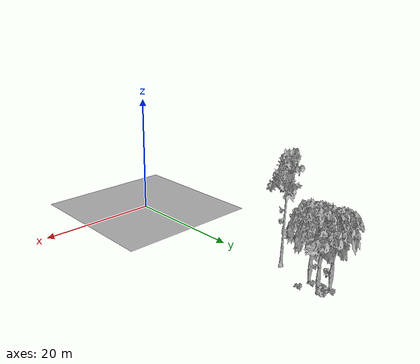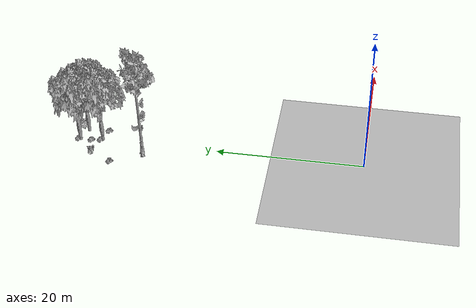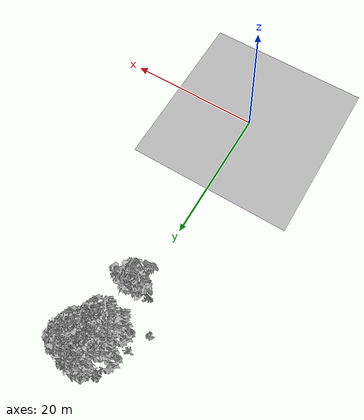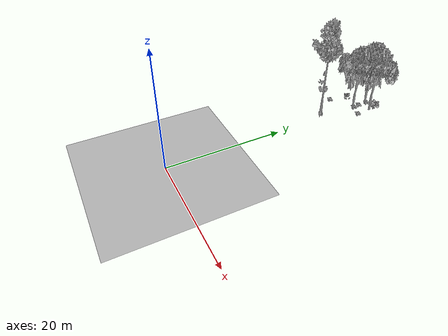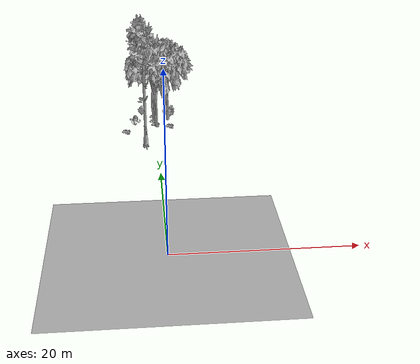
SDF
<sdf version="1.7">
 <world name="default">
  <model name="ground_plane">
   <static>1</static>
   <link name="link">
    <collision name="collision">
     <pose>-50 0 0 0 -0 0</pose>
     <geometry><plane><normal>0 0 1</normal><size>80 80</size></plane></geometry>
     <surface><contact><ode><min_depth>0.01</min_depth><max_vel>0</max_vel></ode></contact></surface>
    </collision>
    <visual name="grass">
     <cast_shadows>0</cast_shadows>
     <geometry>
      <mesh>
       <scale>0.46714285714285714 0.46714285714285714 0.1</scale>
       <uri>file://grass_plane/meshes/grass_plane.dae</uri>
      </mesh>
     </geometry>
    </visual>
   </link>
  </model>
  <model name="Tree 51">
   <static>1</static>
   <pose>1.50310839244505 38.27704314416337 0 1.57079 -0 0</pose>
   <link name="link">
    <collision name="collision">
     <geometry><mesh><scale>3.5 5 3.5</scale><uri>model://tree_2/meshes/tree_2.obj</uri></mesh></geometry>
    </collision>
    <visual name="visual">
     <geometry><mesh><scale>3.5 5 3.5</scale><uri>model://tree_2/meshes/tree_2.obj</uri></mesh></geometry>
    </visual>
   </link>
  </model>
  <model name="Tree 209">
   <static>1</static>
   <pose>-1.6599906796519903 29.963078567674927 0 1.57079 -0 0</pose>
   <link name="link">
    <collision name="collision">
     <geometry><mesh><scale>3.5 5 3.5</scale><uri>model://tree_9/meshes/tree_9.obj</uri></mesh></geometry>
    </collision>
    <visual name="visual">
     <geometry><mesh><scale>3.5 5 3.5</scale><uri>model://tree_9/meshes/tree_9.obj</uri></mesh></geometry>
    </visual>
   </link>
  </model>
  <model name="Tree 401">
   <static>1</static>
   <pose>-0.4606913796727454 38.94446228267215 0 1.57079 -0 0</pose>
   <link name="link">
    <collision name="collision">
     <geometry><mesh><scale>3.5 5 3.5</scale><uri>model://tree_2/meshes/tree_2.obj</uri></mesh></geometry>
    </collision>
    <visual name="visual">
     <geometry><mesh><scale>3.5 5 3.5</scale><uri>model://tree_2/meshes/tree_2.obj</uri></mesh></geometry>
    </visual>
   </link>
  </model>
  <model name="Tree 548">
   <static>1</static>
   <pose>-0.15526900738188232 35.89197355533868 0 1.57079 -0 0</pose>
   <link name="link">
    <collision name="collision">
     <geometry><mesh><scale>3.5 5 3.5</scale><uri>model://tree_2/meshes/tree_2.obj</uri></mesh></geometry>
    </collision>
    <visual name="visual">
     <geometry><mesh><scale>3.5 5 3.5</scale><uri>model://tree_2/meshes/tree_2.obj</uri></mesh></geometry>
    </visual>
   </link>
  </model>
  <model name="Bush 13">
   <static>1</static>
   <pose>-0.32206822656505096 39.26075744710728 0 1.57079 -0 0</pose>
   <link name="link">
    <collision name="collision">
     <geometry><mesh><scale>2 2 2</scale><uri>model://bush_2/meshes/bush_2.obj</uri></mesh></geometry>
     <surface><contact><collide_without_contact>false</collide_without_contact></contact></surface>
    </collision>
    <visual name="visual">
     <geometry><mesh><scale>2 2 2</scale><uri>model://bush_2/meshes/bush_2.obj</uri></mesh></geometry>
    </visual>
   </link>
  </model>
  <model name="Bush 23">
   <static>1</static>
   <pose>1.8009946391382528 38.98714143352137 0 1.57079 -0 0</pose>
   <link name="link">
    <collision name="collision">
     <geometry><mesh><scale>2 2 2</scale><uri>model://bush_1/meshes/bush_1.obj</uri></mesh></geometry>
     <surface><contact><collide_without_contact>false</collide_without_contact></contact></surface>
    </collision>
    <visual name="visual">
     <geometry><mesh><scale>2 2 2</scale><uri>model://bush_1/meshes/bush_1.obj</uri></mesh></geometry>
    </visual>
   </link>
  </model>
  <model name="Bush 82">
   <static>1</static>
   <pose>-4.2472100190562685 33.855338565154995 0 1.57079 -0 0</pose>
   <link name="link">
    <collision name="collision">
     <geometry><mesh><scale>2 2 2</scale><uri>model://bush_2/meshes/bush_2.obj</uri></mesh></geometry>
     <surface><contact><collide_without_contact>false</collide_without_contact></contact></surface>
    </collision>
    <visual name="visual">
     <geometry><mesh><scale>2 2 2</scale><uri>model://bush_2/meshes/bush_2.obj</uri></mesh></geometry>
    </visual>
   </link>
  </model>
  <model name="Bush 124">
   <static>1</static>
   <pose>-0.16154424024367842 36.218615070577656 0 1.57079 -0 0</pose>
   <link name="link">
    <collision name="collision">
     <geometry><mesh><scale>2 2 2</scale><uri>model://bush_2/meshes/bush_2.obj</uri></mesh></geometry>
     <surface><contact><collide_without_contact>false</collide_without_contact></contact></surface>
    </collision>
    <visual name="visual">
     <geometry><mesh><scale>2 2 2</scale><uri>model://bush_2/meshes/bush_2.obj</uri></mesh></geometry>
    </visual>
   </link>
  </model>
  <model name="Bush 224">
   <static>1</static>
   <pose>-3.04483329200022 36.69101670944302 0 1.57079 -0 0</pose>
   <link name="link">
    <collision name="collision">
     <geometry><mesh><scale>2 2 2</scale><uri>model://bush_4/meshes/bush_4.obj</uri></mesh></geometry>
     <surface><contact><collide_without_contact>false</collide_without_contact></contact></surface>
    </collision>
    <visual name="visual">
     <geometry><mesh><scale>2 2 2</scale><uri>model://bush_4/meshes/bush_4.obj</uri></mesh></geometry>
    </visual>
   </link>
  </model>
  <model name="Bush 226">
   <static>1</static>
   <pose>-0.38287692968652465 37.46828338396432 0 1.57079 -0 0</pose>
   <link name="link">
    <collision name="collision">
     <geometry><mesh><scale>2 2 2</scale><uri>model://bush_2/meshes/bush_2.obj</uri></mesh></geometry>
     <surface><contact><collide_without_contact>false</collide_without_contact></contact></surface>
    </collision>
    <visual name="visual">
     <geometry><mesh><scale>2 2 2</scale><uri>model://bush_2/meshes/bush_2.obj</uri></mesh></geometry>
    </visual>
   </link>
  </model>
  <model name="Bush 291">
   <static>1</static>
   <pose>1.809839629435622 35.51274622343462 0 1.57079 -0 0</pose>
   <link name="link">
    <collision name="collision">
     <geometry><mesh><scale>2 2 2</scale><uri>model://bush_2/meshes/bush_2.obj</uri></mesh></geometry>
     <surface><contact><collide_without_contact>false</collide_without_contact></contact></surface>
    </collision>
    <visual name="visual">
     <geometry><mesh><scale>2 2 2</scale><uri>model://bush_2/meshes/bush_2.obj</uri></mesh></geometry>
    </visual>
   </link>
  </model>
 </world>
</sdf>
